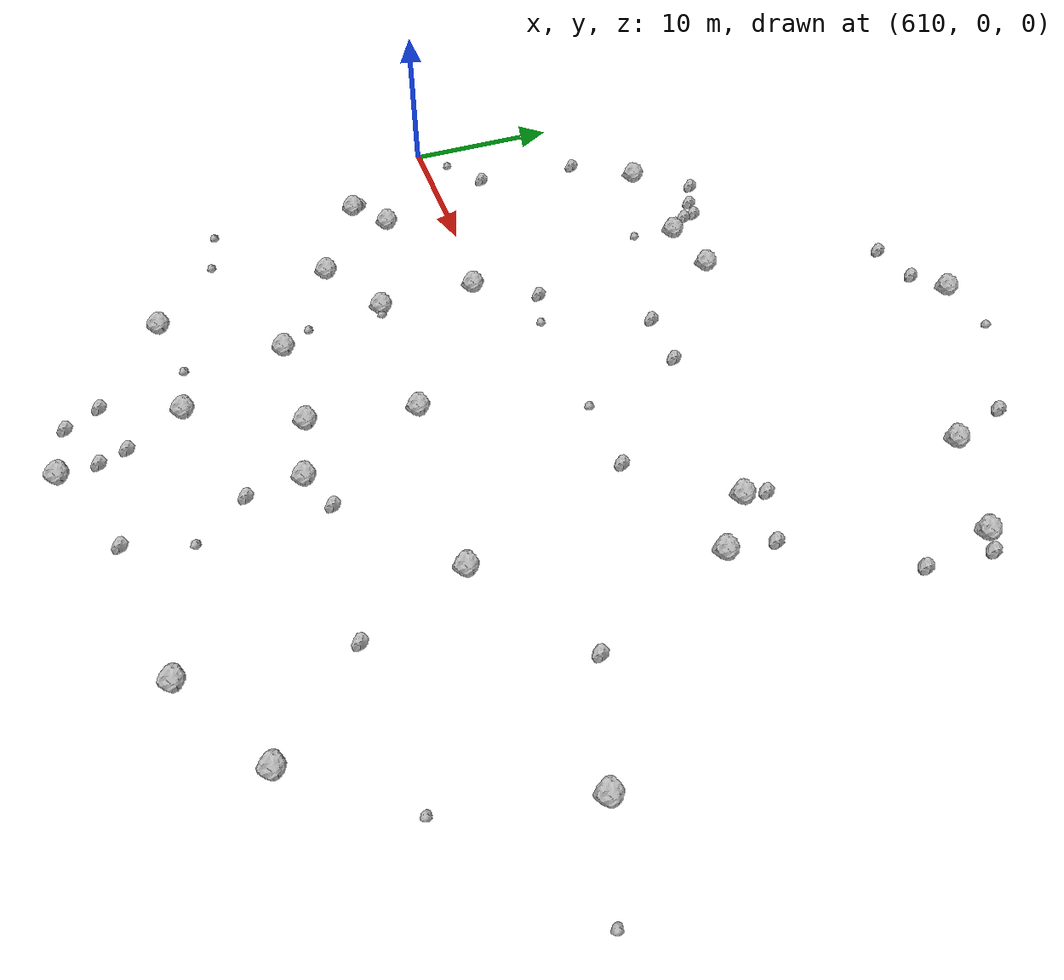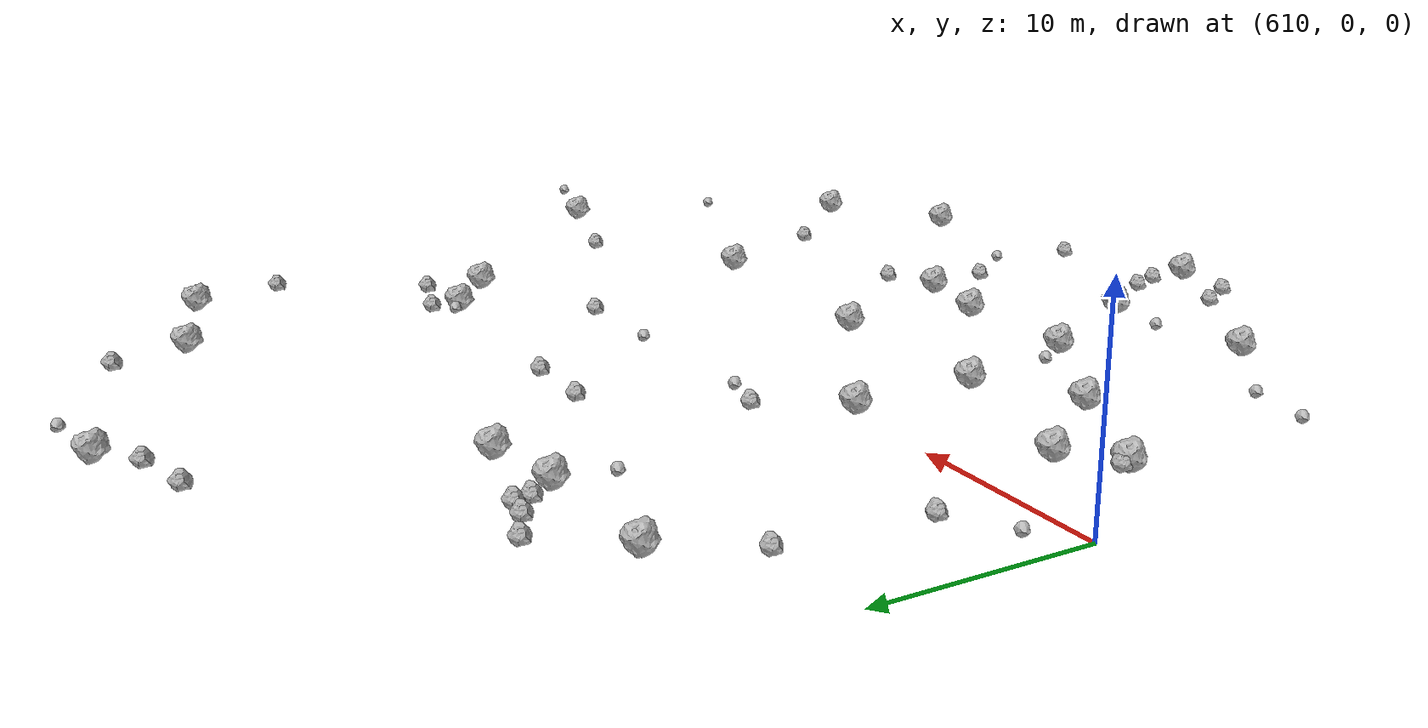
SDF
<sdf version="1.6">
 <world name="default">
  <include><uri>model://sun</uri></include>
  <model name="rock1_16_3">
   <include><uri>model://rock1</uri><pose>636.450109766815 29.371959318570866 0.5 0 0 0</pose></include>
  </model>
  <model name="rock1_16_4">
   <include><uri>model://rock1</uri><pose>635.5658499858516 -7.0106729382777075 0.5 0 0 0</pose></include>
  </model>
  <model name="rock1_16_5">
   <include><uri>model://rock1</uri><pose>650.0188488805406 -23.821356972206935 0.5 0 0 0</pose></include>
  </model>
  <model name="rock1_16_6">
   <include><uri>model://rock1</uri><pose>624.7923504425717 14.457486711052553 0.5 0 0 0</pose></include>
  </model>
  <model name="rock1_16_7">
   <include><uri>model://rock1</uri><pose>656.4285202897238 -19.951855138717537 0.5 0 0 0</pose></include>
  </model>
  <model name="rock1_16_8">
   <include><uri>model://rock1</uri><pose>634.0118755711151 -28.228521214401113 0.5 0 0 0</pose></include>
  </model>
  <model name="rock1_16_9">
   <include><uri>model://rock1</uri><pose>655.2243425714039 20.52233151970122 0.5 0 0 0</pose></include>
  </model>
  <model name="rock1_16_10">
   <include><uri>model://rock1</uri><pose>621.1708244489311 -9.55096825484489 0.5 0 0 0</pose></include>
  </model>
  <model name="rock1_16_11">
   <include><uri>model://rock1</uri><pose>625.8551419305354 -6.896376265565966 0.5 0 0 0</pose></include>
  </model>
  <model name="rock1_16_12">
   <include><uri>model://rock1</uri><pose>638.7892613405726 -14.728184304167844 0.5 0 0 0</pose></include>
  </model>
  <model name="rock1_16_13">
   <include><uri>model://rock1</uri><pose>631.1069910865087 -20.60313818287341 0.5 0 0 0</pose></include>
  </model>
  <model name="rock1_16_14">
   <include><uri>model://rock1</uri><pose>663.016572577161 -5.180527220149848 0.5 0 0 0</pose></include>
  </model>
  <model name="rock1_16_15">
   <include><uri>model://rock1</uri><pose>628.8349027226238 15.174708593815716 0.5 0 0 0</pose></include>
  </model>
  <model name="rock1_16_16">
   <include><uri>model://rock1</uri><pose>614.9457453821699 -6.2229765630808025 0.5 0 0 0</pose></include>
  </model>
  <model name="rock1_16_17">
   <include><uri>model://rock1</uri><pose>625.7550865037708 -0.5389702376093091 0.5 0 0 0</pose></include>
  </model>
  <model name="rock1_16_18">
   <include><uri>model://rock1</uri><pose>651.6721780077435 6.120646099638847 0.5 0 0 0</pose></include>
  </model>
  <model name="rock1_16_19">
   <include><uri>model://rock1</uri><pose>648.0490833876886 -7.712261793964185 0.5 0 0 0</pose></include>
  </model>
  <model name="rock1_16_20">
   <include><uri>model://rock1</uri><pose>627.6756132832951 -13.74339329778141 0.5 0 0 0</pose></include>
  </model>
  <model name="rock1_16_21">
   <include><uri>model://rock1</uri><pose>648.3795669255965 8.708092209473243 0.5 0 0 0</pose></include>
  </model>
  <model name="rock1_16_22">
   <include><uri>model://rock1</uri><pose>622.989490050649 -21.007595827481857 0.5 0 0 0</pose></include>
  </model>
  <model name="rock1_16_23">
   <include><uri>model://rock1</uri><pose>617.2991699721144 -4.325334276974978 0.5 0 0 0</pose></include>
  </model>
  <model name="rock1_16_24">
   <include><uri>model://rock1</uri><pose>634.4530160815987 -13.749684387904008 0.5 0 0 0</pose></include>
  </model>
  <model name="rock1_16_25">
   <include><uri>model://rock1</uri><pose>617.8249289960667 14.23642605434138 0.5 0 0 0</pose></include>
  </model>
  <model name="rock1_16_26">
   <include><uri>model://rock1</uri><pose>648.6158382934506 22.616073297932715 0.5 0 0 0</pose></include>
  </model>
  <model name="rock2_16_0">
   <include><uri>model://rock2</uri><pose>633.8054179636216 -25.85744985975938 0.3 0 0 0</pose></include>
  </model>
  <model name="rock2_16_1">
   <include><uri>model://rock2</uri><pose>636.6815912937376 9.452604922052814 0.3 0 0 0</pose></include>
  </model>
  <model name="rock2_16_2">
   <include><uri>model://rock2</uri><pose>643.8460688859849 3.0680222192792996 0.3 0 0 0</pose></include>
  </model>
  <model name="rock2_16_3">
   <include><uri>model://rock2</uri><pose>631.4630576939909 27.013595712242463 0.3 0 0 0</pose></include>
  </model>
  <model name="rock2_16_4">
   <include><uri>model://rock2</uri><pose>640.3534795124244 -25.359643280629797 0.3 0 0 0</pose></include>
  </model>
  <model name="rock2_16_5">
   <include><uri>model://rock2</uri><pose>629.1991509822626 -25.39519718365881 0.3 0 0 0</pose></include>
  </model>
  <model name="rock2_16_6">
   <include><uri>model://rock2</uri><pose>655.5591221824416 -2.764421395170107 0.3 0 0 0</pose></include>
  </model>
  <model name="rock2_16_7">
   <include><uri>model://rock2</uri><pose>633.1840597832975 -24.166981885930028 0.3 0 0 0</pose></include>
  </model>
  <model name="rock2_16_8">
   <include><uri>model://rock2</uri><pose>648.5487498834602 10.134150747183291 0.3 0 0 0</pose></include>
  </model>
  <model name="rock2_16_9">
   <include><uri>model://rock2</uri><pose>614.7478772706037 -5.680480327881249 0.3 0 0 0</pose></include>
  </model>
  <model name="rock2_16_10">
   <include><uri>model://rock2</uri><pose>656.5032648232149 20.095340779306085 0.3 0 0 0</pose></include>
  </model>
  <model name="rock2_16_11">
   <include><uri>model://rock2</uri><pose>623.4695363917914 16.604807513256198 0.3 0 0 0</pose></include>
  </model>
  <model name="rock2_16_12">
   <include><uri>model://rock2</uri><pose>614.6661202863621 3.5005781729215 0.3 0 0 0</pose></include>
  </model>
  <model name="rock2_16_13">
   <include><uri>model://rock2</uri><pose>628.1226079938433 3.3375533107476514 0.3 0 0 0</pose></include>
  </model>
  <model name="rock2_16_14">
   <include><uri>model://rock2</uri><pose>656.2339157973155 15.990585248860135 0.3 0 0 0</pose></include>
  </model>
  <model name="rock2_16_15">
   <include><uri>model://rock2</uri><pose>651.9621305333909 9.073817258099957 0.3 0 0 0</pose></include>
  </model>
  <model name="rock2_16_16">
   <include><uri>model://rock2</uri><pose>622.2224001318884 16.821334561830803 0.3 0 0 0</pose></include>
  </model>
  <model name="rock2_16_17">
   <include><uri>model://rock2</uri><pose>647.2811819058761 26.386273360180347 0.3 0 0 0</pose></include>
  </model>
  <model name="rock2_16_18">
   <include><uri>model://rock2</uri><pose>634.5447232610626 27.78852812904777 0.3 0 0 0</pose></include>
  </model>
  <model name="rock2_16_19">
   <include><uri>model://rock2</uri><pose>641.3595778314939 -13.607756532586922 0.3 0 0 0</pose></include>
  </model>
  <model name="rock2_16_20">
   <include><uri>model://rock2</uri><pose>632.8370970169946 9.497762157839126 0.3 0 0 0</pose></include>
  </model>
  <model name="rock2_16_21">
   <include><uri>model://rock2</uri><pose>639.1178379530704 -18.170063795784728 0.3 0 0 0</pose></include>
  </model>
  <model name="rock2_16_22">
   <include><uri>model://rock2</uri><pose>630.3424805523051 -27.50899133155531 0.3 0 0 0</pose></include>
  </model>
  <model name="rock2_16_23">
   <include><uri>model://rock2</uri><pose>623.6098390509815 15.795234435347894 0.3 0 0 0</pose></include>
  </model>
  <model name="rock2_16_24">
   <include><uri>model://rock2</uri><pose>615.2338803721187 10.344153429901851 0.3 0 0 0</pose></include>
  </model>
  <model name="rock2_16_25">
   <include><uri>model://rock2</uri><pose>620.4114705245395 17.700754004107075 0.3 0 0 0</pose></include>
  </model>
  <model name="rock2_16_26">
   <include><uri>model://rock2</uri><pose>650.8298043531587 -14.300118323601893 0.3 0 0 0</pose></include>
  </model>
  <model name="rock3_16_0">
   <include><uri>model://rock3</uri><pose>626.3480713916249 -11.876114674645716 0.2 0 0 0</pose></include>
  </model>
  <model name="rock3_16_1">
   <include><uri>model://rock3</uri><pose>641.534062415948 -21.41045657339308 0.2 0 0 0</pose></include>
  </model>
  <model name="rock3_16_2">
   <include><uri>model://rock3</uri><pose>614.8815868827527 -16.15139177407041 0.2 0 0 0</pose></include>
  </model>
  <model name="rock3_16_3">
   <include><uri>model://rock3</uri><pose>640.2923797565475 29.974476597751064 0.2 0 0 0</pose></include>
  </model>
  <model name="rock3_16_4">
   <include><uri>model://rock3</uri><pose>630.5810476222684 2.6216523552180178 0.2 0 0 0</pose></include>
  </model>
  <model name="rock3_16_5">
   <include><uri>model://rock3</uri><pose>638.7135905524599 2.937956712017531 0.2 0 0 0</pose></include>
  </model>
  <model name="rock3_16_6">
   <include><uri>model://rock3</uri><pose>618.0915659007063 -16.855614485872508 0.2 0 0 0</pose></include>
  </model>
  <model name="rock3_16_7">
   <include><uri>model://rock3</uri><pose>611.978351302498 1.6418991035006307 0.2 0 0 0</pose></include>
  </model>
  <model name="rock3_16_8">
   <include><uri>model://rock3</uri><pose>668.9140992455708 -7.104483796651984 0.2 0 0 0</pose></include>
  </model>
  <model name="rock3_16_9">
   <include><uri>model://rock3</uri><pose>627.5638620981254 -20.082098798782447 0.2 0 0 0</pose></include>
  </model>
  <model name="rock3_16_10">
   <include><uri>model://rock3</uri><pose>626.4239673023179 -6.99271378168973 0.2 0 0 0</pose></include>
  </model>
  <model name="rock3_16_11">
   <include><uri>model://rock3</uri><pose>661.0868348714649 -13.629681408688008 0.2 0 0 0</pose></include>
  </model>
  <model name="rock3_16_12">
   <include><uri>model://rock3</uri><pose>647.6455684189748 9.165643871257771 0.2 0 0 0</pose></include>
  </model>
  <model name="rock3_16_13">
   <include><uri>model://rock3</uri><pose>624.3163593600805 11.724469341345717 0.2 0 0 0</pose></include>
  </model>
 </world>
</sdf>
